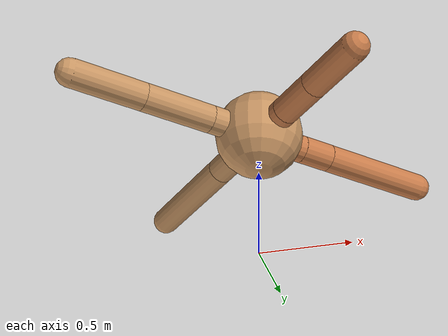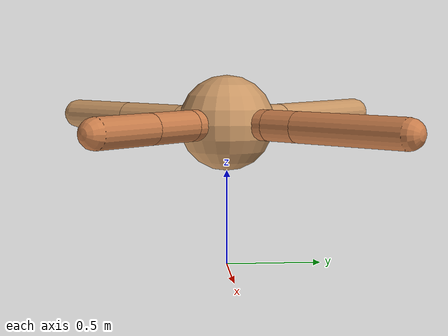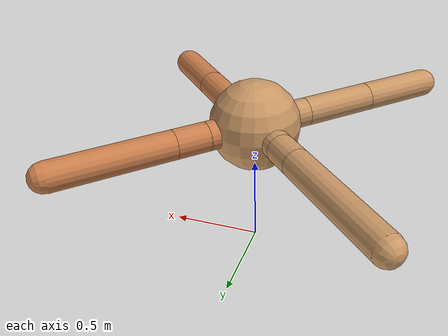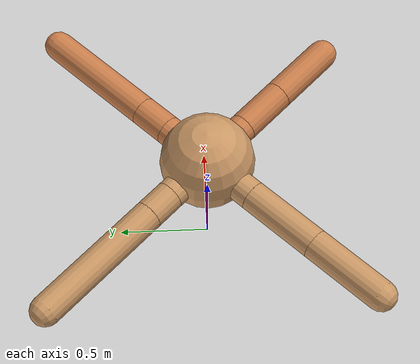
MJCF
<mujoco model="ant">
  <compiler angle="degree" coordinate="local" inertiafromgeom="true" />
  <option integrator="RK4" timestep="0.01" />
  <custom>
    <numeric data="0.0 0.0 0.55 1.0 0.0 0.0 0.0 0.0 1.0 0.0 -1.0 0.0 -1.0 0.0 1.0" name="init_qpos" />
  </custom>
  <default>
    <joint armature="1" damping="1" limited="true" />
    <geom conaffinity="0" condim="3" density="5.0" friction="1.5 0.1 0.1" margin="0.01" rgba="0.8 0.6 0.4 1" />
  </default>
  <worldbody>
    <body name="torso" pos="0 0 0.75">
      <geom name="torso_geom" pos="0 0 0" size="0.25" type="sphere" />

      <body name="front_left_leg" pos="0 0 0">
        <geom fromto="0.0 0.0 0.0 0.2 0.2 0.0" name="aux_1_geom" size="0.08" type="capsule" rgba=".8 .5 .3 1" />
        <body name="aux_1" pos="0.2 0.2 0.0">
          <joint axis="0 0 1" name="hip_1" pos="0.0 0.0 0.0" range="-40 40" type="hinge" />
          <geom fromto="0.0 0.0 0.0 0.12873284437830934 0.12873284437830934 0.0" name="left_leg_geom" size="0.08" type="capsule" rgba=".8 .5 .3 1" />
          <body pos="0.12873284437830934 0.12873284437830934 0.0" name="front_left_foot">
            <joint axis="-1 1 0" name="ankle_1" pos="0.0 0.0 0.0" range="30 100" type="hinge" />
            <geom fromto="0.0 0.0 0.0 0.4599554850235345 0.4599554850235345 0.0" name="left_ankle_geom" size="0.08" type="capsule" rgba=".8 .5 .3 1" />
          </body>
        </body>
      </body>
      <body name="front_right_leg" pos="0 0 0">
        <geom fromto="0.0 0.0 0.0 -0.2 0.2 0.0" name="aux_2_geom" size="0.08" type="capsule" />
        <body name="aux_2" pos="-0.2 0.2 0.0">
          <joint axis="0 0 1" name="hip_2" pos="0.0 0.0 0.0" range="-40 40" type="hinge" />
          <geom fromto="0.0 0.0 0.0 -0.10972663502095306 0.10972663502095306 0.0" name="right_leg_geom" size="0.08" type="capsule" />
          <body pos="-0.10972663502095306 0.10972663502095306 0.0" name="front_right_foot">
            <joint axis="1 1 0" name="ankle_2" pos="0.0 0.0 0.0" range="-100 -30" type="hinge" />
            <geom fromto="0.0 0.0 0.0 -0.5075857592039613 0.5075857592039613 0.0" name="right_ankle_geom" size="0.08" type="capsule" />
          </body>
        </body>
      </body>
      <body name="left_back_leg" pos="0 0 0">
        <geom fromto="0.0 0.0 0.0 -0.22329194096648594 -0.22329194096648594 0.0" name="aux_3_geom" size="0.08" type="capsule" />
        <body name="aux_3" pos="-0.22329194096648594 -0.22329194096648594 0.0">
          <joint axis="0 0 1" name="hip_3" pos="0.0 0.0 0.0" range="-40 40" type="hinge" />
          <geom fromto="0.0 0.0 0.0 -0.2896670175680406 -0.2896670175680406 0.0" name="back_leg_geom" size="0.08" type="capsule" />
          <body pos="-0.2896670175680406 -0.2896670175680406 0.0" name="left_back_foot">
            <joint axis="-1 1 0" name="ankle_3" pos="0.0 0.0 0.0" range="-100 -30" type="hinge" />
            <geom fromto="0.0 0.0 0.0 -0.2981173650027241 -0.2981173650027241 0.0" name="third_ankle_geom" size="0.08" type="capsule" />
          </body>
        </body>
      </body>
      <body name="right_back_leg" pos="0 0 0">
        <geom fromto="0.0 0.0 0.0 0.2 -0.2 0.0" name="aux_4_geom" size="0.08" type="capsule" rgba=".8 .5 .3 1" />
        <body name="aux_4" pos="0.2 -0.2 0.0">
          <joint axis="0 0 1" name="hip_4" pos="0.0 0.0 0.0" range="-40 40" type="hinge" />
          <geom fromto="0.0 0.0 0.0 0.1995276677712429 -0.1995276677712429 0.0" name="rightback_leg_geom" size="0.08" type="capsule" rgba=".8 .5 .3 1" />
          <body pos="0.1995276677712429 -0.1995276677712429 0.0" name="right_back_foot">
            <joint axis="1 1 0" name="ankle_4" pos="0.0 0.0 0.0" range="30 100" type="hinge" />
            <geom fromto="0.0 0.0 0.0 0.263835101934604 -0.263835101934604 0.0" name="fourth_ankle_geom" size="0.08" type="capsule" rgba=".8 .5 .3 1" />
          </body>
        </body>
      </body>
    </body>
  </worldbody>
  <actuator>
    <motor ctrllimited="true" ctrlrange="-1.0 1.0" joint="hip_4" gear="150" />
    <motor ctrllimited="true" ctrlrange="-1.0 1.0" joint="ankle_4" gear="150" />
    <motor ctrllimited="true" ctrlrange="-1.0 1.0" joint="hip_1" gear="150" />
    <motor ctrllimited="true" ctrlrange="-1.0 1.0" joint="ankle_1" gear="150" />
    <motor ctrllimited="true" ctrlrange="-1.0 1.0" joint="hip_2" gear="150" />
    <motor ctrllimited="true" ctrlrange="-1.0 1.0" joint="ankle_2" gear="150" />
    <motor ctrllimited="true" ctrlrange="-1.0 1.0" joint="hip_3" gear="150" />
    <motor ctrllimited="true" ctrlrange="-1.0 1.0" joint="ankle_3" gear="150" />
  </actuator>
</mujoco>
